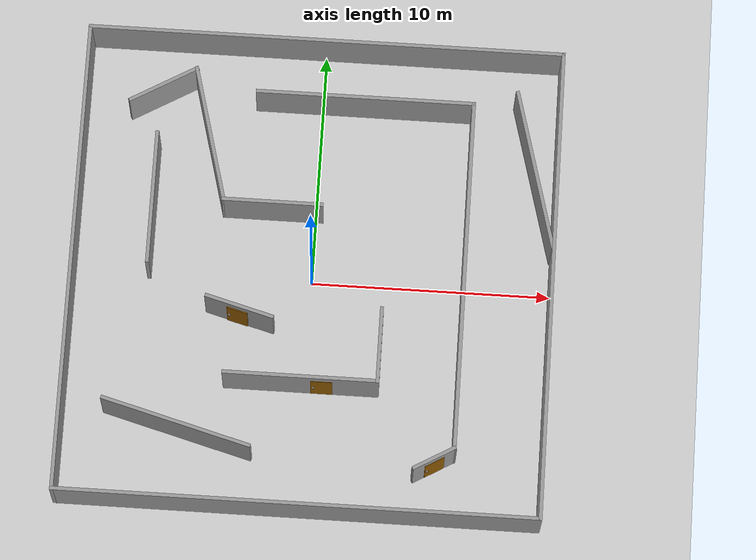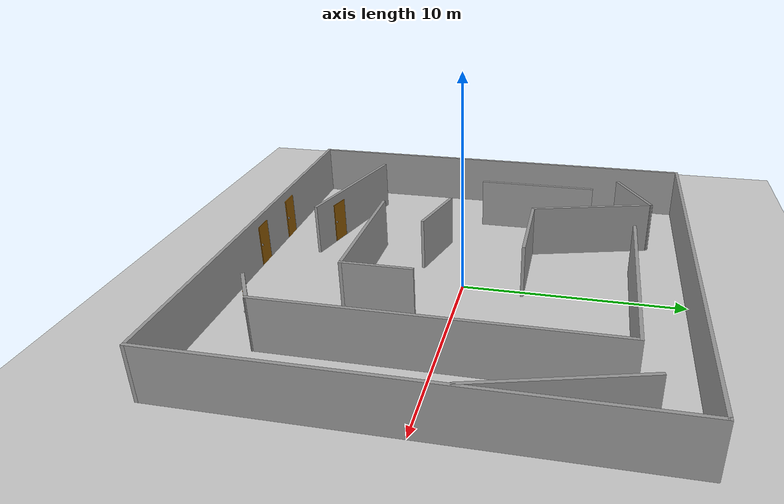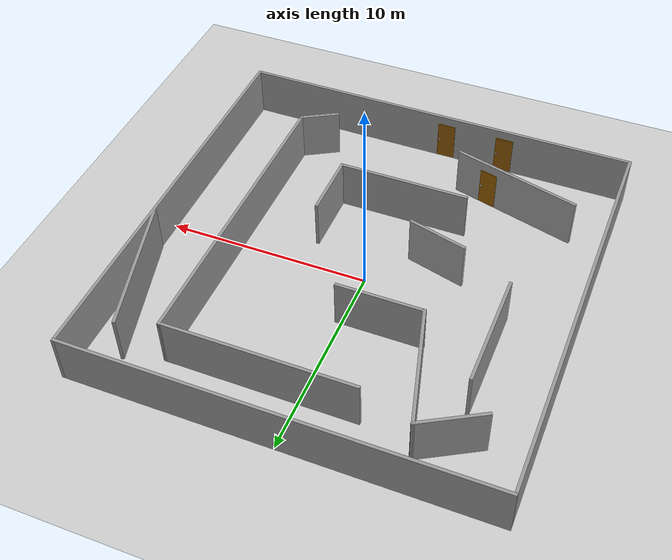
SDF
<sdf version="1.6">
 <world name="default">
  <model name="ground_plane">
   <static>1</static>
   <link name="link">
    <collision name="collision">
     <geometry><plane><normal>0 0 1</normal><size>100 100</size></plane></geometry>
     <surface>
      <contact><collide_bitmask>65535</collide_bitmask></contact>
      <friction><ode><mu>100</mu><mu2>50</mu2></ode></friction>
     </surface>
    </collision>
    <visual name="visual">
     <cast_shadows>0</cast_shadows>
     <geometry><plane><normal>0 0 1</normal><size>100 100</size></plane></geometry>
     <material>
      <script><uri>file://media/materials/scripts/gazebo.material</uri><name>Gazebo/Grey</name></script>
     </material>
    </visual>
   </link>
  </model>
  <model name="random">
   <link name="Wall_10">
    <collision name="Wall_10_Collision">
     <geometry><box><size>3 0.15 2.5</size></box></geometry>
     <pose>0 0 1.25 0 -0 0</pose>
    </collision>
    <visual name="Wall_10_Visual">
     <pose>0 0 1.25 0 -0 0</pose>
     <geometry><box><size>3 0.15 2.5</size></box></geometry>
     <material>
      <script><uri>file://media/materials/scripts/gazebo.material</uri><name>Gazebo/Grey</name></script>
      <ambient>1 1 1 1</ambient>
     </material>
     <meta><layer>0</layer></meta>
    </visual>
    <pose>-2.88006 -1.82082 0 0 -0 -0.261799</pose>
   </link>
   <link name="Wall_12">
    <collision name="Wall_12_Collision">
     <geometry><box><size>3.25 0.15 2.5</size></box></geometry>
     <pose>0 0 1.25 0 -0 0</pose>
    </collision>
    <visual name="Wall_12_Visual">
     <pose>0 0 1.25 0 -0 0</pose>
     <geometry><box><size>3.25 0.15 2.5</size></box></geometry>
     <material>
      <script><uri>file://media/materials/scripts/gazebo.material</uri><name>Gazebo/Grey</name></script>
      <ambient>1 1 1 1</ambient>
     </material>
     <meta><layer>0</layer></meta>
    </visual>
    <pose>3.023 -3.1055 0 0 -0 -1.5708</pose>
   </link>
   <link name="Wall_13">
    <collision name="Wall_13_Collision">
     <geometry><box><size>6.5 0.15 2.5</size></box></geometry>
     <pose>0 0 1.25 0 -0 0</pose>
    </collision>
    <visual name="Wall_13_Visual">
     <pose>0 0 1.25 0 -0 0</pose>
     <geometry><box><size>6.5 0.15 2.5</size></box></geometry>
     <material>
      <script><uri>file://media/materials/scripts/gazebo.material</uri><name>Gazebo/Grey</name></script>
      <ambient>1 1 1 1</ambient>
     </material>
     <meta><layer>0</layer></meta>
    </visual>
    <pose>-0.152 -4.6555 0 0 -0 3.14159</pose>
   </link>
   <link name="Wall_15">
    <collision name="Wall_15_Collision">
     <geometry><box><size>5.75 0.15 2.5</size></box></geometry>
     <pose>0 0 1.25 0 -0 0</pose>
    </collision>
    <visual name="Wall_15_Visual">
     <pose>0 0 1.25 0 -0 0</pose>
     <geometry><box><size>5.75 0.15 2.5</size></box></geometry>
     <material>
      <script><uri>file://media/materials/scripts/gazebo.material</uri><name>Gazebo/Grey</name></script>
      <ambient>1 1 1 1</ambient>
     </material>
     <meta><layer>0</layer></meta>
    </visual>
    <pose>-6.8325 2.682 0 0 -0 1.5708</pose>
   </link>
   <link name="Wall_17">
    <collision name="Wall_17_Collision">
     <geometry><box><size>9.25 0.15 2.5</size></box></geometry>
     <pose>0 0 1.25 0 -0 0</pose>
    </collision>
    <visual name="Wall_17_Visual">
     <pose>0 0 1.25 0 -0 0</pose>
     <geometry><box><size>9.25 0.15 2.5</size></box></geometry>
     <material>
      <script><uri>file://media/materials/scripts/gazebo.material</uri><name>Gazebo/Grey</name></script>
      <ambient>1 1 1 1</ambient>
     </material>
     <meta><layer>0</layer></meta>
    </visual>
    <pose>1.7951 7.57362 0 0 -0 0</pose>
   </link>
   <link name="Wall_18">
    <collision name="Wall_18_Collision">
     <geometry><box><size>15 0.15 2.5</size></box></geometry>
     <pose>0 0 1.25 0 -0 0</pose>
    </collision>
    <visual name="Wall_18_Visual">
     <pose>0 0 1.25 0 -0 0</pose>
     <geometry><box><size>15 0.15 2.5</size></box></geometry>
     <material>
      <script><uri>file://media/materials/scripts/gazebo.material</uri><name>Gazebo/Grey</name></script>
      <ambient>1 1 1 1</ambient>
     </material>
     <meta><layer>0</layer></meta>
    </visual>
    <pose>6.3451 0.148619 0 0 -0 -1.5708</pose>
   </link>
   <link name="Wall_19">
    <collision name="Wall_19_Collision">
     <geometry><box><size>2 0.15 2.5</size></box></geometry>
     <pose>0 0 1.25 0 -0 0</pose>
    </collision>
    <visual name="Wall_19_Visual">
     <pose>0 0 1.25 0 -0 0</pose>
     <geometry><box><size>2 0.15 2.5</size></box></geometry>
     <material>
      <script><uri>file://media/materials/scripts/gazebo.material</uri><name>Gazebo/Grey</name></script>
      <ambient>1 1 1 1</ambient>
     </material>
     <meta><layer>0</layer></meta>
    </visual>
    <pose>5.54403 -7.73888 0 0 -0 -2.61799</pose>
   </link>
   <link name="Wall_2">
    <collision name="Wall_2_Collision">
     <geometry><box><size>20.15 0.15 2.5</size></box></geometry>
     <pose>0 0 1.25 0 -0 0</pose>
    </collision>
    <visual name="Wall_2_Visual">
     <pose>0 0 1.25 0 -0 0</pose>
     <geometry><box><size>20.15 0.15 2.5</size></box></geometry>
     <material>
      <script><uri>file://media/materials/scripts/gazebo.material</uri><name>Gazebo/Grey</name></script>
      <ambient>1 1 1 1</ambient>
     </material>
     <meta><layer>0</layer></meta>
    </visual>
    <pose>10 0 0 0 -0 -1.5708</pose>
   </link>
   <link name="Wall_21">
    <collision name="Wall_21_Collision">
     <geometry><box><size>4.25 0.15 2.5</size></box></geometry>
     <pose>0 0 1.25 0 -0 0</pose>
    </collision>
    <visual name="Wall_21_Visual">
     <pose>0 0 1.25 0 -0 0</pose>
     <geometry><box><size>4.25 0.15 2.5</size></box></geometry>
     <material>
      <script><uri>file://media/materials/scripts/gazebo.material</uri><name>Gazebo/Grey</name></script>
      <ambient>1 1 1 1</ambient>
     </material>
     <meta><layer>0</layer></meta>
    </visual>
    <pose>-1.81119 2.75941 0 0 -0 3.14159</pose>
   </link>
   <link name="Wall_22">
    <collision name="Wall_22_Collision">
     <geometry><box><size>6 0.15 2.5</size></box></geometry>
     <pose>0 0 1.25 0 -0 0</pose>
    </collision>
    <visual name="Wall_22_Visual">
     <pose>0 0 1.25 0 -0 0</pose>
     <geometry><box><size>6 0.15 2.5</size></box></geometry>
     <material>
      <script><uri>file://media/materials/scripts/gazebo.material</uri><name>Gazebo/Grey</name></script>
      <ambient>1 1 1 1</ambient>
     </material>
     <meta><layer>0</layer></meta>
    </visual>
    <pose>-4.61823 5.58474 0 0 -0 1.8326</pose>
   </link>
   <link name="Wall_23">
    <collision name="Wall_23_Collision">
     <geometry><box><size>3.25 0.15 2.5</size></box></geometry>
     <pose>0 0 1.25 0 -0 0</pose>
    </collision>
    <visual name="Wall_23_Visual">
     <pose>0 0 1.25 0 -0 0</pose>
     <geometry><box><size>3.25 0.15 2.5</size></box></geometry>
     <material>
      <script><uri>file://media/materials/scripts/gazebo.material</uri><name>Gazebo/Grey</name></script>
      <ambient>1 1 1 1</ambient>
     </material>
     <meta><layer>0</layer></meta>
    </visual>
    <pose>-6.71762 7.63507 0 0 -0 -2.61799</pose>
   </link>
   <link name="Wall_25">
    <collision name="Wall_25_Collision">
     <geometry><box><size>6.5 0.15 2.5</size></box></geometry>
     <pose>0 0 1.25 0 -0 0</pose>
    </collision>
    <visual name="Wall_25_Visual">
     <pose>0 0 1.25 0 -0 0</pose>
     <geometry><box><size>6.5 0.15 2.5</size></box></geometry>
     <material>
      <script><uri>file://media/materials/scripts/gazebo.material</uri><name>Gazebo/Grey</name></script>
      <ambient>1 1 1 1</ambient>
     </material>
     <meta><layer>0</layer></meta>
    </visual>
    <pose>-5.14959 -6.88166 0 0 -0 -0.261799</pose>
   </link>
   <link name="Wall_27">
    <collision name="Wall_27_Collision">
     <geometry><box><size>7 0.15 2.5</size></box></geometry>
     <pose>0 0 1.25 0 -0 0</pose>
    </collision>
    <visual name="Wall_27_Visual">
     <pose>0 0 1.25 0 -0 0</pose>
     <geometry><box><size>7 0.15 2.5</size></box></geometry>
     <material>
      <script><uri>file://media/materials/scripts/gazebo.material</uri><name>Gazebo/Grey</name></script>
      <ambient>1 1 1 1</ambient>
     </material>
     <meta><layer>0</layer></meta>
    </visual>
    <pose>9.05456 4.87216 0 0 -0 -1.309</pose>
   </link>
   <link name="Wall_4">
    <collision name="Wall_4_Collision">
     <geometry><box><size>20.15 0.15 2.5</size></box></geometry>
     <pose>0 0 1.25 0 -0 0</pose>
    </collision>
    <visual name="Wall_4_Visual">
     <pose>0 0 1.25 0 -0 0</pose>
     <geometry><box><size>20.15 0.15 2.5</size></box></geometry>
     <material>
      <script><uri>file://media/materials/scripts/gazebo.material</uri><name>Gazebo/Grey</name></script>
      <ambient>1 1 1 1</ambient>
     </material>
     <meta><layer>0</layer></meta>
    </visual>
    <pose>0 10 0 0 -0 3.14159</pose>
   </link>
   <link name="Wall_6">
    <collision name="Wall_6_Collision">
     <geometry><box><size>20.15 0.15 2.5</size></box></geometry>
     <pose>0 0 1.25 0 -0 0</pose>
    </collision>
    <visual name="Wall_6_Visual">
     <pose>0 0 1.25 0 -0 0</pose>
     <geometry><box><size>20.15 0.15 2.5</size></box></geometry>
     <material>
      <script><uri>file://media/materials/scripts/gazebo.material</uri><name>Gazebo/Grey</name></script>
      <ambient>1 1 1 1</ambient>
     </material>
     <meta><layer>0</layer></meta>
    </visual>
    <pose>0 -10 0 0 -0 3.14159</pose>
   </link>
   <link name="Wall_8">
    <collision name="Wall_8_Collision">
     <geometry><box><size>20.15 0.15 2.5</size></box></geometry>
     <pose>0 0 1.25 0 -0 0</pose>
    </collision>
    <visual name="Wall_8_Visual">
     <pose>0 0 1.25 0 -0 0</pose>
     <geometry><box><size>20.15 0.15 2.5</size></box></geometry>
     <material>
      <script><uri>file://media/materials/scripts/gazebo.material</uri><name>Gazebo/Grey</name></script>
      <ambient>1 1 1 1</ambient>
     </material>
     <meta><layer>0</layer></meta>
    </visual>
    <pose>-10 0 0 0 -0 -1.5708</pose>
   </link>
   <static>1</static>
  </model>
  <model name="custom_door_1">
   <link name="link_0">
    <inertial>
     <mass>1</mass>
     <inertia>
      <ixx>0.166667</ixx>
      <ixy>0</ixy>
      <ixz>0</ixz>
      <iyy>0.166667</iyy>
      <iyz>0</iyz>
      <izz>0.166667</izz>
     </inertia>
    </inertial>
    <pose>0.023443 -0.170637 -0.020383 0 -0 0</pose>
    <visual name="visual">
     <geometry><box><size>0.05 0.9 2</size></box></geometry>
     <material>
      <lighting>1</lighting>
      <script><uri>file://media/materials/scripts/gazebo.material</uri><name>Gazebo/Grey</name></script>
      <shader type="vertex"><normal_map>__default__</normal_map></shader>
      <ambient>0.561 0.349 0.008 1</ambient>
      <diffuse>0.561 0.349 0.008 1</diffuse>
      <specular>0.561 0.349 0.008 1</specular>
      <emissive>0 0 0 1</emissive>
     </material>
    </visual>
    <collision name="collision">
     <geometry><box><size>0.05 0.9 2</size></box></geometry>
     <surface>
      <friction>
       <ode><mu>1</mu><mu2>1</mu2><fdir1>0 0 0</fdir1><slip1>0</slip1><slip2>0</slip2></ode>
       <torsional>
        <coefficient>1</coefficient>
        <patch_radius>0</patch_radius>
        <surface_radius>0</surface_radius>
        <use_patch_radius>1</use_patch_radius>
        <ode><slip>0</slip></ode>
       </torsional>
      </friction>
      <bounce><restitution_coefficient>0</restitution_coefficient><threshold>1e+06</threshold></bounce>
      <contact>
       <collide_without_contact>0</collide_without_contact>
       <collide_without_contact_bitmask>1</collide_without_contact_bitmask>
       <collide_bitmask>1</collide_bitmask>
       <ode>
        <soft_cfm>0</soft_cfm>
        <soft_erp>0.2</soft_erp>
        <kp>1e+13</kp>
        <kd>1</kd>
        <max_vel>0.01</max_vel>
        <min_depth>0</min_depth>
       </ode>
       <bullet>
        <split_impulse>1</split_impulse>
        <split_impulse_penetration_threshold>-0.01</split_impulse_penetration_threshold>
        <soft_cfm>0</soft_cfm>
        <soft_erp>0.2</soft_erp>
        <kp>1e+13</kp>
        <kd>1</kd>
       </bullet>
      </contact>
     </surface>
    </collision>
   </link>
   <link name="link_1">
    <inertial>
     <mass>1</mass>
     <inertia><ixx>0.1</ixx><ixy>0</ixy><ixz>0</ixz><iyy>0.1</iyy><iyz>0</iyz><izz>0.1</izz></inertia>
    </inertial>
    <pose>-0.023443 0.170636 0.020383 0 -0 0</pose>
    <gravity>0</gravity>
    <visual name="visual">
     <geometry><sphere><radius>0.05</radius></sphere></geometry>
     <material>
      <lighting>1</lighting>
      <script><uri>file://media/materials/scripts/gazebo.material</uri><name>Gazebo/Grey</name></script>
      <shader type="vertex"><normal_map>__default__</normal_map></shader>
      <ambient>0.729 0.741 0.714 1</ambient>
      <diffuse>0.729 0.741 0.714 1</diffuse>
      <specular>0.729 0.741 0.714 1</specular>
      <emissive>0 0 0 1</emissive>
     </material>
    </visual>
    <collision name="collision">
     <geometry><sphere><radius>0.05</radius></sphere></geometry>
     <surface>
      <friction>
       <ode><mu>1</mu><mu2>1</mu2><fdir1>0 0 0</fdir1><slip1>0</slip1><slip2>0</slip2></ode>
       <torsional>
        <coefficient>1</coefficient>
        <patch_radius>0</patch_radius>
        <surface_radius>0</surface_radius>
        <use_patch_radius>1</use_patch_radius>
        <ode><slip>0</slip></ode>
       </torsional>
      </friction>
      <bounce><restitution_coefficient>0</restitution_coefficient><threshold>1e+06</threshold></bounce>
      <contact>
       <collide_without_contact>0</collide_without_contact>
       <collide_without_contact_bitmask>1</collide_without_contact_bitmask>
       <collide_bitmask>1</collide_bitmask>
       <ode>
        <soft_cfm>0</soft_cfm>
        <soft_erp>0.2</soft_erp>
        <kp>1e+13</kp>
        <kd>1</kd>
        <max_vel>0.01</max_vel>
        <min_depth>0</min_depth>
       </ode>
       <bullet>
        <split_impulse>1</split_impulse>
        <split_impulse_penetration_threshold>-0.01</split_impulse_penetration_threshold>
        <soft_cfm>0</soft_cfm>
        <soft_erp>0.2</soft_erp>
        <kp>1e+13</kp>
        <kd>1</kd>
       </bullet>
      </contact>
     </surface>
    </collision>
   </link>
   <joint name="link_0_JOINT_0" type="fixed">
    <parent>link_0</parent>
    <child>link_1</child>
    <physics>
     <ode><limit><cfm>0</cfm><erp>0.2</erp></limit><suspension><cfm>0</cfm><erp>0.2</erp></suspension></ode>
    </physics>
   </joint>
   <static>1</static>
   <pose>-3.14628 -1.86988 1.06 0 -0 1.31512</pose>
  </model>
  <model name="custom_door_4">
   <link name="link_0">
    <inertial>
     <mass>1</mass>
     <inertia>
      <ixx>0.166667</ixx>
      <ixy>0</ixy>
      <ixz>0</ixz>
      <iyy>0.166667</iyy>
      <iyz>0</iyz>
      <izz>0.166667</izz>
     </inertia>
    </inertial>
    <pose>0.023443 -0.170637 -0.020383 0 -0 0</pose>
    <visual name="visual">
     <geometry><box><size>0.05 0.9 2</size></box></geometry>
     <material>
      <lighting>1</lighting>
      <script><uri>file://media/materials/scripts/gazebo.material</uri><name>Gazebo/Grey</name></script>
      <shader type="vertex"><normal_map>__default__</normal_map></shader>
      <ambient>0.561 0.349 0.008 1</ambient>
      <diffuse>0.561 0.349 0.008 1</diffuse>
      <specular>0.561 0.349 0.008 1</specular>
      <emissive>0 0 0 1</emissive>
     </material>
    </visual>
    <collision name="collision">
     <geometry><box><size>0.05 0.9 2</size></box></geometry>
     <surface>
      <friction>
       <ode><mu>1</mu><mu2>1</mu2><fdir1>0 0 0</fdir1><slip1>0</slip1><slip2>0</slip2></ode>
       <torsional>
        <coefficient>1</coefficient>
        <patch_radius>0</patch_radius>
        <surface_radius>0</surface_radius>
        <use_patch_radius>1</use_patch_radius>
        <ode><slip>0</slip></ode>
       </torsional>
      </friction>
      <bounce><restitution_coefficient>0</restitution_coefficient><threshold>1e+06</threshold></bounce>
      <contact>
       <collide_without_contact>0</collide_without_contact>
       <collide_without_contact_bitmask>1</collide_without_contact_bitmask>
       <collide_bitmask>1</collide_bitmask>
       <ode>
        <soft_cfm>0</soft_cfm>
        <soft_erp>0.2</soft_erp>
        <kp>1e+13</kp>
        <kd>1</kd>
        <max_vel>0.01</max_vel>
        <min_depth>0</min_depth>
       </ode>
       <bullet>
        <split_impulse>1</split_impulse>
        <split_impulse_penetration_threshold>-0.01</split_impulse_penetration_threshold>
        <soft_cfm>0</soft_cfm>
        <soft_erp>0.2</soft_erp>
        <kp>1e+13</kp>
        <kd>1</kd>
       </bullet>
      </contact>
     </surface>
    </collision>
   </link>
   <link name="link_1">
    <inertial>
     <mass>1</mass>
     <inertia><ixx>0.1</ixx><ixy>0</ixy><ixz>0</ixz><iyy>0.1</iyy><iyz>0</iyz><izz>0.1</izz></inertia>
    </inertial>
    <pose>-0.023443 0.170636 0.020383 0 -0 0</pose>
    <gravity>0</gravity>
    <visual name="visual">
     <geometry><sphere><radius>0.05</radius></sphere></geometry>
     <material>
      <lighting>1</lighting>
      <script><uri>file://media/materials/scripts/gazebo.material</uri><name>Gazebo/Grey</name></script>
      <shader type="vertex"><normal_map>__default__</normal_map></shader>
      <ambient>0.729 0.741 0.714 1</ambient>
      <diffuse>0.729 0.741 0.714 1</diffuse>
      <specular>0.729 0.741 0.714 1</specular>
      <emissive>0 0 0 1</emissive>
     </material>
    </visual>
    <collision name="collision">
     <geometry><sphere><radius>0.05</radius></sphere></geometry>
     <surface>
      <friction>
       <ode><mu>1</mu><mu2>1</mu2><fdir1>0 0 0</fdir1><slip1>0</slip1><slip2>0</slip2></ode>
       <torsional>
        <coefficient>1</coefficient>
        <patch_radius>0</patch_radius>
        <surface_radius>0</surface_radius>
        <use_patch_radius>1</use_patch_radius>
        <ode><slip>0</slip></ode>
       </torsional>
      </friction>
      <bounce><restitution_coefficient>0</restitution_coefficient><threshold>1e+06</threshold></bounce>
      <contact>
       <collide_without_contact>0</collide_without_contact>
       <collide_without_contact_bitmask>1</collide_without_contact_bitmask>
       <collide_bitmask>1</collide_bitmask>
       <ode>
        <soft_cfm>0</soft_cfm>
        <soft_erp>0.2</soft_erp>
        <kp>1e+13</kp>
        <kd>1</kd>
        <max_vel>0.01</max_vel>
        <min_depth>0</min_depth>
       </ode>
       <bullet>
        <split_impulse>1</split_impulse>
        <split_impulse_penetration_threshold>-0.01</split_impulse_penetration_threshold>
        <soft_cfm>0</soft_cfm>
        <soft_erp>0.2</soft_erp>
        <kp>1e+13</kp>
        <kd>1</kd>
       </bullet>
      </contact>
     </surface>
    </collision>
   </link>
   <joint name="link_0_JOINT_0" type="fixed">
    <parent>link_0</parent>
    <child>link_1</child>
    <physics>
     <ode><limit><cfm>0</cfm><erp>0.2</erp></limit><suspension><cfm>0</cfm><erp>0.2</erp></suspension></ode>
    </physics>
   </joint>
   <static>1</static>
   <pose>5.43487 -7.90605 1.06 0 -0 2.09745</pose>
  </model>
  <model name="custom_door_5">
   <link name="link_0">
    <inertial>
     <mass>1</mass>
     <inertia>
      <ixx>0.166667</ixx>
      <ixy>0</ixy>
      <ixz>0</ixz>
      <iyy>0.166667</iyy>
      <iyz>0</iyz>
      <izz>0.166667</izz>
     </inertia>
    </inertial>
    <pose>0.023443 -0.170637 -0.020383 0 -0 0</pose>
    <visual name="visual">
     <geometry><box><size>0.05 0.9 2</size></box></geometry>
     <material>
      <lighting>1</lighting>
      <script><uri>file://media/materials/scripts/gazebo.material</uri><name>Gazebo/Grey</name></script>
      <shader type="vertex"><normal_map>__default__</normal_map></shader>
      <ambient>0.561 0.349 0.008 1</ambient>
      <diffuse>0.561 0.349 0.008 1</diffuse>
      <specular>0.561 0.349 0.008 1</specular>
      <emissive>0 0 0 1</emissive>
     </material>
    </visual>
    <collision name="collision">
     <geometry><box><size>0.05 0.9 2</size></box></geometry>
     <surface>
      <friction>
       <ode><mu>1</mu><mu2>1</mu2><fdir1>0 0 0</fdir1><slip1>0</slip1><slip2>0</slip2></ode>
       <torsional>
        <coefficient>1</coefficient>
        <patch_radius>0</patch_radius>
        <surface_radius>0</surface_radius>
        <use_patch_radius>1</use_patch_radius>
        <ode><slip>0</slip></ode>
       </torsional>
      </friction>
      <bounce><restitution_coefficient>0</restitution_coefficient><threshold>1e+06</threshold></bounce>
      <contact>
       <collide_without_contact>0</collide_without_contact>
       <collide_without_contact_bitmask>1</collide_without_contact_bitmask>
       <collide_bitmask>1</collide_bitmask>
       <ode>
        <soft_cfm>0</soft_cfm>
        <soft_erp>0.2</soft_erp>
        <kp>1e+13</kp>
        <kd>1</kd>
        <max_vel>0.01</max_vel>
        <min_depth>0</min_depth>
       </ode>
       <bullet>
        <split_impulse>1</split_impulse>
        <split_impulse_penetration_threshold>-0.01</split_impulse_penetration_threshold>
        <soft_cfm>0</soft_cfm>
        <soft_erp>0.2</soft_erp>
        <kp>1e+13</kp>
        <kd>1</kd>
       </bullet>
      </contact>
     </surface>
    </collision>
   </link>
   <link name="link_1">
    <inertial>
     <mass>1</mass>
     <inertia><ixx>0.1</ixx><ixy>0</ixy><ixz>0</ixz><iyy>0.1</iyy><iyz>0</iyz><izz>0.1</izz></inertia>
    </inertial>
    <pose>-0.023443 0.170636 0.020383 0 -0 0</pose>
    <gravity>0</gravity>
    <visual name="visual">
     <geometry><sphere><radius>0.05</radius></sphere></geometry>
     <material>
      <lighting>1</lighting>
      <script><uri>file://media/materials/scripts/gazebo.material</uri><name>Gazebo/Grey</name></script>
      <shader type="vertex"><normal_map>__default__</normal_map></shader>
      <ambient>0.729 0.741 0.714 1</ambient>
      <diffuse>0.729 0.741 0.714 1</diffuse>
      <specular>0.729 0.741 0.714 1</specular>
      <emissive>0 0 0 1</emissive>
     </material>
    </visual>
    <collision name="collision">
     <geometry><sphere><radius>0.05</radius></sphere></geometry>
     <surface>
      <friction>
       <ode><mu>1</mu><mu2>1</mu2><fdir1>0 0 0</fdir1><slip1>0</slip1><slip2>0</slip2></ode>
       <torsional>
        <coefficient>1</coefficient>
        <patch_radius>0</patch_radius>
        <surface_radius>0</surface_radius>
        <use_patch_radius>1</use_patch_radius>
        <ode><slip>0</slip></ode>
       </torsional>
      </friction>
      <bounce><restitution_coefficient>0</restitution_coefficient><threshold>1e+06</threshold></bounce>
      <contact>
       <collide_without_contact>0</collide_without_contact>
       <collide_without_contact_bitmask>1</collide_without_contact_bitmask>
       <collide_bitmask>1</collide_bitmask>
       <ode>
        <soft_cfm>0</soft_cfm>
        <soft_erp>0.2</soft_erp>
        <kp>1e+13</kp>
        <kd>1</kd>
        <max_vel>0.01</max_vel>
        <min_depth>0</min_depth>
       </ode>
       <bullet>
        <split_impulse>1</split_impulse>
        <split_impulse_penetration_threshold>-0.01</split_impulse_penetration_threshold>
        <soft_cfm>0</soft_cfm>
        <soft_erp>0.2</soft_erp>
        <kp>1e+13</kp>
        <kd>1</kd>
       </bullet>
      </contact>
     </surface>
    </collision>
   </link>
   <joint name="link_0_JOINT_0" type="fixed">
    <parent>link_0</parent>
    <child>link_1</child>
    <physics>
     <ode><limit><cfm>0</cfm><erp>0.2</erp></limit><suspension><cfm>0</cfm><erp>0.2</erp></suspension></ode>
    </physics>
   </joint>
   <static>1</static>
   <pose>-3.55405 -7.20296 1.06 0 0 -1.8304</pose>
  </model>
  <model name="custom_door_0_clone_2">
   <link name="link_0">
    <inertial>
     <mass>1</mass>
     <inertia>
      <ixx>0.166667</ixx>
      <ixy>0</ixy>
      <ixz>0</ixz>
      <iyy>0.166667</iyy>
      <iyz>0</iyz>
      <izz>0.166667</izz>
     </inertia>
    </inertial>
    <pose>0.023443 -0.170637 -0.020383 0 -0 0</pose>
    <visual name="visual">
     <geometry><box><size>0.05 0.9 2</size></box></geometry>
     <material>
      <lighting>1</lighting>
      <script><uri>file://media/materials/scripts/gazebo.material</uri><name>Gazebo/Grey</name></script>
      <shader type="vertex"><normal_map>__default__</normal_map></shader>
      <ambient>0.561 0.349 0.008 1</ambient>
      <diffuse>0.561 0.349 0.008 1</diffuse>
      <specular>0.561 0.349 0.008 1</specular>
      <emissive>0 0 0 1</emissive>
     </material>
    </visual>
    <collision name="collision">
     <geometry><box><size>0.05 0.9 2</size></box></geometry>
     <surface>
      <friction>
       <ode><mu>1</mu><mu2>1</mu2><fdir1>0 0 0</fdir1><slip1>0</slip1><slip2>0</slip2></ode>
       <torsional>
        <coefficient>1</coefficient>
        <patch_radius>0</patch_radius>
        <surface_radius>0</surface_radius>
        <use_patch_radius>1</use_patch_radius>
        <ode><slip>0</slip></ode>
       </torsional>
      </friction>
      <bounce><restitution_coefficient>0</restitution_coefficient><threshold>1e+06</threshold></bounce>
      <contact>
       <collide_without_contact>0</collide_without_contact>
       <collide_without_contact_bitmask>1</collide_without_contact_bitmask>
       <collide_bitmask>1</collide_bitmask>
       <ode>
        <soft_cfm>0</soft_cfm>
        <soft_erp>0.2</soft_erp>
        <kp>1e+13</kp>
        <kd>1</kd>
        <max_vel>0.01</max_vel>
        <min_depth>0</min_depth>
       </ode>
       <bullet>
        <split_impulse>1</split_impulse>
        <split_impulse_penetration_threshold>-0.01</split_impulse_penetration_threshold>
        <soft_cfm>0</soft_cfm>
        <soft_erp>0.2</soft_erp>
        <kp>1e+13</kp>
        <kd>1</kd>
       </bullet>
      </contact>
     </surface>
    </collision>
   </link>
   <link name="link_1">
    <inertial>
     <mass>1</mass>
     <inertia><ixx>0.1</ixx><ixy>0</ixy><ixz>0</ixz><iyy>0.1</iyy><iyz>0</iyz><izz>0.1</izz></inertia>
    </inertial>
    <pose>-0.023443 0.170636 0.020383 0 -0 0</pose>
    <gravity>0</gravity>
    <visual name="visual">
     <geometry><sphere><radius>0.05</radius></sphere></geometry>
     <material>
      <lighting>1</lighting>
      <script><uri>file://media/materials/scripts/gazebo.material</uri><name>Gazebo/Grey</name></script>
      <shader type="vertex"><normal_map>__default__</normal_map></shader>
      <ambient>0.729 0.741 0.714 1</ambient>
      <diffuse>0.729 0.741 0.714 1</diffuse>
      <specular>0.729 0.741 0.714 1</specular>
      <emissive>0 0 0 1</emissive>
     </material>
    </visual>
    <collision name="collision">
     <geometry><sphere><radius>0.05</radius></sphere></geometry>
     <surface>
      <friction>
       <ode><mu>1</mu><mu2>1</mu2><fdir1>0 0 0</fdir1><slip1>0</slip1><slip2>0</slip2></ode>
       <torsional>
        <coefficient>1</coefficient>
        <patch_radius>0</patch_radius>
        <surface_radius>0</surface_radius>
        <use_patch_radius>1</use_patch_radius>
        <ode><slip>0</slip></ode>
       </torsional>
      </friction>
      <bounce><restitution_coefficient>0</restitution_coefficient><threshold>1e+06</threshold></bounce>
      <contact>
       <collide_without_contact>0</collide_without_contact>
       <collide_without_contact_bitmask>1</collide_without_contact_bitmask>
       <collide_bitmask>1</collide_bitmask>
       <ode>
        <soft_cfm>0</soft_cfm>
        <soft_erp>0.2</soft_erp>
        <kp>1e+13</kp>
        <kd>1</kd>
        <max_vel>0.01</max_vel>
        <min_depth>0</min_depth>
       </ode>
       <bullet>
        <split_impulse>1</split_impulse>
        <split_impulse_penetration_threshold>-0.01</split_impulse_penetration_threshold>
        <soft_cfm>0</soft_cfm>
        <soft_erp>0.2</soft_erp>
        <kp>1e+13</kp>
        <kd>1</kd>
       </bullet>
      </contact>
     </surface>
    </collision>
   </link>
   <joint name="link_0_JOINT_0" type="fixed">
    <parent>link_0</parent>
    <child>link_1</child>
    <physics>
     <ode><limit><cfm>0</cfm><erp>0.2</erp></limit><suspension><cfm>0</cfm><erp>0.2</erp></suspension></ode>
    </physics>
   </joint>
   <static>1</static>
   <pose>0.543789 -4.7444 1.06 0 -0 1.5708</pose>
  </model>
  <model name="custom_door_0_clone_3">
   <link name="link_0">
    <inertial>
     <mass>1</mass>
     <inertia>
      <ixx>0.166667</ixx>
      <ixy>0</ixy>
      <ixz>0</ixz>
      <iyy>0.166667</iyy>
      <iyz>0</iyz>
      <izz>0.166667</izz>
     </inertia>
    </inertial>
    <pose>0.023443 -0.170637 -0.020383 0 -0 0</pose>
    <visual name="visual">
     <geometry><box><size>0.05 0.9 2</size></box></geometry>
     <material>
      <lighting>1</lighting>
      <script><uri>file://media/materials/scripts/gazebo.material</uri><name>Gazebo/Grey</name></script>
      <shader type="vertex"><normal_map>__default__</normal_map></shader>
      <ambient>0.561 0.349 0.008 1</ambient>
      <diffuse>0.561 0.349 0.008 1</diffuse>
      <specular>0.561 0.349 0.008 1</specular>
      <emissive>0 0 0 1</emissive>
     </material>
    </visual>
    <collision name="collision">
     <geometry><box><size>0.05 0.9 2</size></box></geometry>
     <surface>
      <friction>
       <ode><mu>1</mu><mu2>1</mu2><fdir1>0 0 0</fdir1><slip1>0</slip1><slip2>0</slip2></ode>
       <torsional>
        <coefficient>1</coefficient>
        <patch_radius>0</patch_radius>
        <surface_radius>0</surface_radius>
        <use_patch_radius>1</use_patch_radius>
        <ode><slip>0</slip></ode>
       </torsional>
      </friction>
      <bounce><restitution_coefficient>0</restitution_coefficient><threshold>1e+06</threshold></bounce>
      <contact>
       <collide_without_contact>0</collide_without_contact>
       <collide_without_contact_bitmask>1</collide_without_contact_bitmask>
       <collide_bitmask>1</collide_bitmask>
       <ode>
        <soft_cfm>0</soft_cfm>
        <soft_erp>0.2</soft_erp>
        <kp>1e+13</kp>
        <kd>1</kd>
        <max_vel>0.01</max_vel>
        <min_depth>0</min_depth>
       </ode>
       <bullet>
        <split_impulse>1</split_impulse>
        <split_impulse_penetration_threshold>-0.01</split_impulse_penetration_threshold>
        <soft_cfm>0</soft_cfm>
        <soft_erp>0.2</soft_erp>
        <kp>1e+13</kp>
        <kd>1</kd>
       </bullet>
      </contact>
     </surface>
    </collision>
   </link>
   <link name="link_1">
    <inertial>
     <mass>1</mass>
     <inertia><ixx>0.1</ixx><ixy>0</ixy><ixz>0</ixz><iyy>0.1</iyy><iyz>0</iyz><izz>0.1</izz></inertia>
    </inertial>
    <pose>-0.023443 0.170636 0.020383 0 -0 0</pose>
    <gravity>0</gravity>
    <visual name="visual">
     <geometry><sphere><radius>0.05</radius></sphere></geometry>
     <material>
      <lighting>1</lighting>
      <script><uri>file://media/materials/scripts/gazebo.material</uri><name>Gazebo/Grey</name></script>
      <shader type="vertex"><normal_map>__default__</normal_map></shader>
      <ambient>0.729 0.741 0.714 1</ambient>
      <diffuse>0.729 0.741 0.714 1</diffuse>
      <specular>0.729 0.741 0.714 1</specular>
      <emissive>0 0 0 1</emissive>
     </material>
    </visual>
    <collision name="collision">
     <geometry><sphere><radius>0.05</radius></sphere></geometry>
     <surface>
      <friction>
       <ode><mu>1</mu><mu2>1</mu2><fdir1>0 0 0</fdir1><slip1>0</slip1><slip2>0</slip2></ode>
       <torsional>
        <coefficient>1</coefficient>
        <patch_radius>0</patch_radius>
        <surface_radius>0</surface_radius>
        <use_patch_radius>1</use_patch_radius>
        <ode><slip>0</slip></ode>
       </torsional>
      </friction>
      <bounce><restitution_coefficient>0</restitution_coefficient><threshold>1e+06</threshold></bounce>
      <contact>
       <collide_without_contact>0</collide_without_contact>
       <collide_without_contact_bitmask>1</collide_without_contact_bitmask>
       <collide_bitmask>1</collide_bitmask>
       <ode>
        <soft_cfm>0</soft_cfm>
        <soft_erp>0.2</soft_erp>
        <kp>1e+13</kp>
        <kd>1</kd>
        <max_vel>0.01</max_vel>
        <min_depth>0</min_depth>
       </ode>
       <bullet>
        <split_impulse>1</split_impulse>
        <split_impulse_penetration_threshold>-0.01</split_impulse_penetration_threshold>
        <soft_cfm>0</soft_cfm>
        <soft_erp>0.2</soft_erp>
        <kp>1e+13</kp>
        <kd>1</kd>
       </bullet>
      </contact>
     </surface>
    </collision>
   </link>
   <joint name="link_0_JOINT_0" type="fixed">
    <parent>link_0</parent>
    <child>link_1</child>
    <physics>
     <ode><limit><cfm>0</cfm><erp>0.2</erp></limit><suspension><cfm>0</cfm><erp>0.2</erp></suspension></ode>
    </physics>
   </joint>
   <static>1</static>
   <pose>-0.463378 -9.89099 1.06 0 0 -1.5708</pose>
  </model>
  <model name="custom_door_0_clone_3_clone">
   <link name="link_0">
    <inertial>
     <mass>1</mass>
     <inertia>
      <ixx>0.166667</ixx>
      <ixy>0</ixy>
      <ixz>0</ixz>
      <iyy>0.166667</iyy>
      <iyz>0</iyz>
      <izz>0.166667</izz>
     </inertia>
    </inertial>
    <pose>0.023443 -0.170637 -0.020383 0 -0 0</pose>
    <visual name="visual">
     <geometry><box><size>0.05 0.9 2</size></box></geometry>
     <material>
      <lighting>1</lighting>
      <script><uri>file://media/materials/scripts/gazebo.material</uri><name>Gazebo/Grey</name></script>
      <shader type="vertex"><normal_map>__default__</normal_map></shader>
      <ambient>0.561 0.349 0.008 1</ambient>
      <diffuse>0.561 0.349 0.008 1</diffuse>
      <specular>0.561 0.349 0.008 1</specular>
      <emissive>0 0 0 1</emissive>
     </material>
    </visual>
    <collision name="collision">
     <geometry><box><size>0.05 0.9 2</size></box></geometry>
     <surface>
      <friction>
       <ode><mu>1</mu><mu2>1</mu2><fdir1>0 0 0</fdir1><slip1>0</slip1><slip2>0</slip2></ode>
       <torsional>
        <coefficient>1</coefficient>
        <patch_radius>0</patch_radius>
        <surface_radius>0</surface_radius>
        <use_patch_radius>1</use_patch_radius>
        <ode><slip>0</slip></ode>
       </torsional>
      </friction>
      <bounce><restitution_coefficient>0</restitution_coefficient><threshold>1e+06</threshold></bounce>
      <contact>
       <collide_without_contact>0</collide_without_contact>
       <collide_without_contact_bitmask>1</collide_without_contact_bitmask>
       <collide_bitmask>1</collide_bitmask>
       <ode>
        <soft_cfm>0</soft_cfm>
        <soft_erp>0.2</soft_erp>
        <kp>1e+13</kp>
        <kd>1</kd>
        <max_vel>0.01</max_vel>
        <min_depth>0</min_depth>
       </ode>
       <bullet>
        <split_impulse>1</split_impulse>
        <split_impulse_penetration_threshold>-0.01</split_impulse_penetration_threshold>
        <soft_cfm>0</soft_cfm>
        <soft_erp>0.2</soft_erp>
        <kp>1e+13</kp>
        <kd>1</kd>
       </bullet>
      </contact>
     </surface>
    </collision>
   </link>
   <link name="link_1">
    <inertial>
     <mass>1</mass>
     <inertia><ixx>0.1</ixx><ixy>0</ixy><ixz>0</ixz><iyy>0.1</iyy><iyz>0</iyz><izz>0.1</izz></inertia>
    </inertial>
    <pose>-0.023443 0.170636 0.020383 0 -0 0</pose>
    <gravity>0</gravity>
    <visual name="visual">
     <geometry><sphere><radius>0.05</radius></sphere></geometry>
     <material>
      <lighting>1</lighting>
      <script><uri>file://media/materials/scripts/gazebo.material</uri><name>Gazebo/Grey</name></script>
      <shader type="vertex"><normal_map>__default__</normal_map></shader>
      <ambient>0.729 0.741 0.714 1</ambient>
      <diffuse>0.729 0.741 0.714 1</diffuse>
      <specular>0.729 0.741 0.714 1</specular>
      <emissive>0 0 0 1</emissive>
     </material>
    </visual>
    <collision name="collision">
     <geometry><sphere><radius>0.05</radius></sphere></geometry>
     <surface>
      <friction>
       <ode><mu>1</mu><mu2>1</mu2><fdir1>0 0 0</fdir1><slip1>0</slip1><slip2>0</slip2></ode>
       <torsional>
        <coefficient>1</coefficient>
        <patch_radius>0</patch_radius>
        <surface_radius>0</surface_radius>
        <use_patch_radius>1</use_patch_radius>
        <ode><slip>0</slip></ode>
       </torsional>
      </friction>
      <bounce><restitution_coefficient>0</restitution_coefficient><threshold>1e+06</threshold></bounce>
      <contact>
       <collide_without_contact>0</collide_without_contact>
       <collide_without_contact_bitmask>1</collide_without_contact_bitmask>
       <collide_bitmask>1</collide_bitmask>
       <ode>
        <soft_cfm>0</soft_cfm>
        <soft_erp>0.2</soft_erp>
        <kp>1e+13</kp>
        <kd>1</kd>
        <max_vel>0.01</max_vel>
        <min_depth>0</min_depth>
       </ode>
       <bullet>
        <split_impulse>1</split_impulse>
        <split_impulse_penetration_threshold>-0.01</split_impulse_penetration_threshold>
        <soft_cfm>0</soft_cfm>
        <soft_erp>0.2</soft_erp>
        <kp>1e+13</kp>
        <kd>1</kd>
       </bullet>
      </contact>
     </surface>
    </collision>
   </link>
   <joint name="link_0_JOINT_0" type="fixed">
    <parent>link_0</parent>
    <child>link_1</child>
    <physics>
     <ode><limit><cfm>0</cfm><erp>0.2</erp></limit><suspension><cfm>0</cfm><erp>0.2</erp></suspension></ode>
    </physics>
   </joint>
   <static>1</static>
   <pose>-3.53535 -9.88155 1.06 0 0 -1.5708</pose>
  </model>
 </world>
</sdf>
